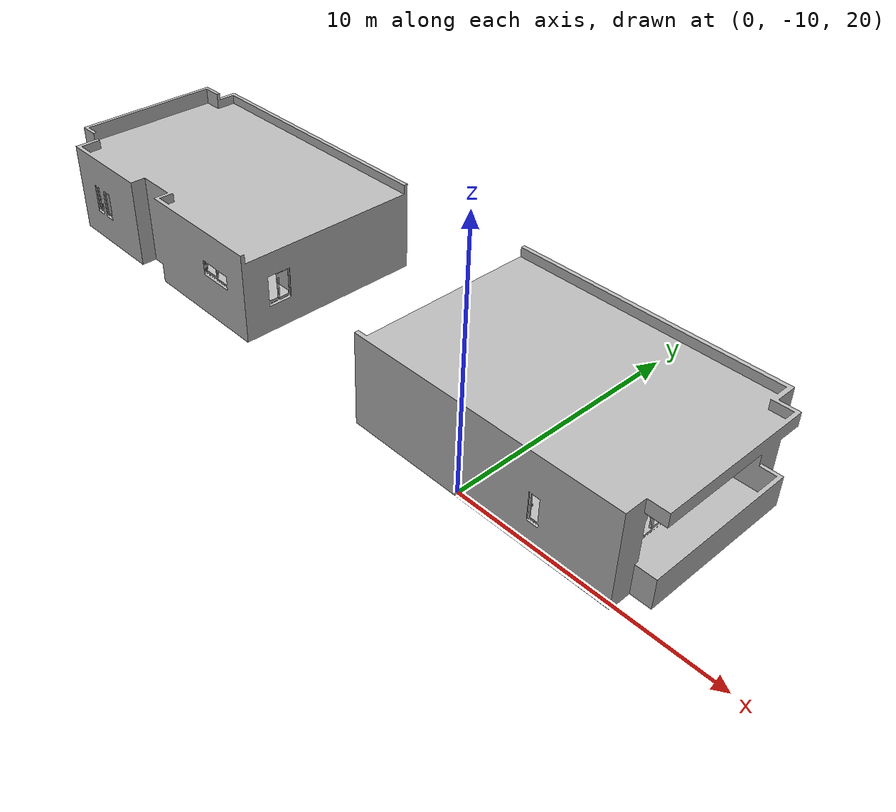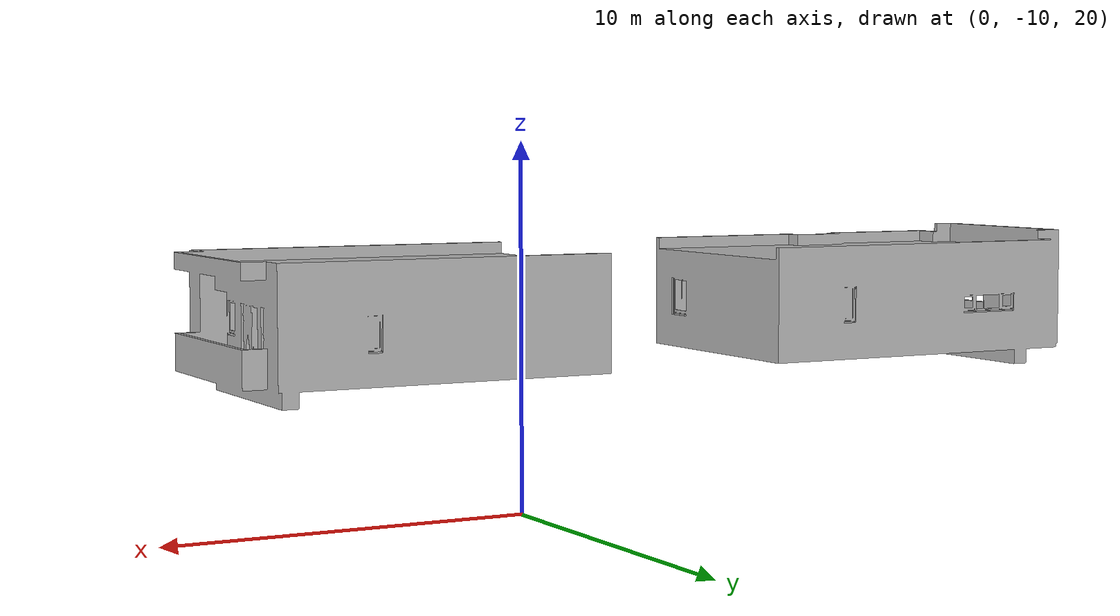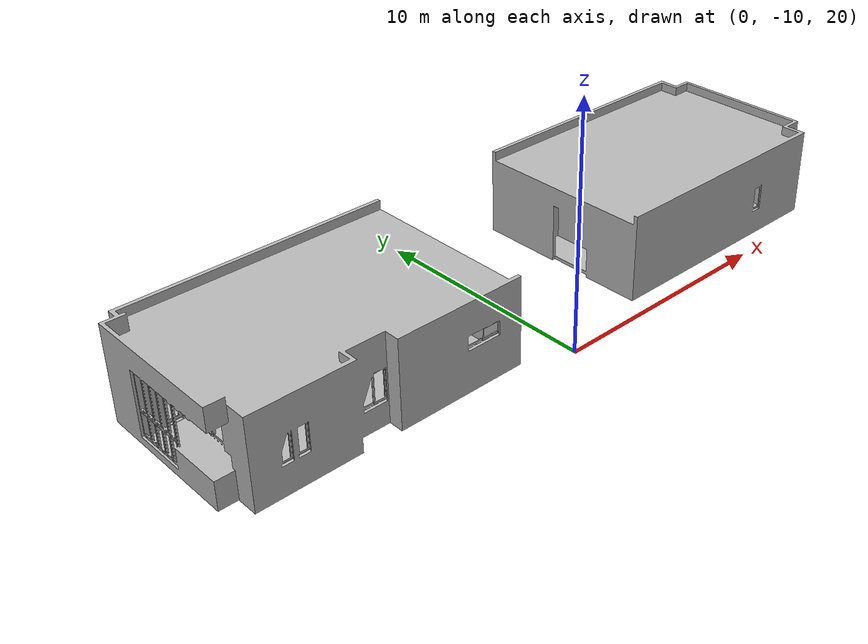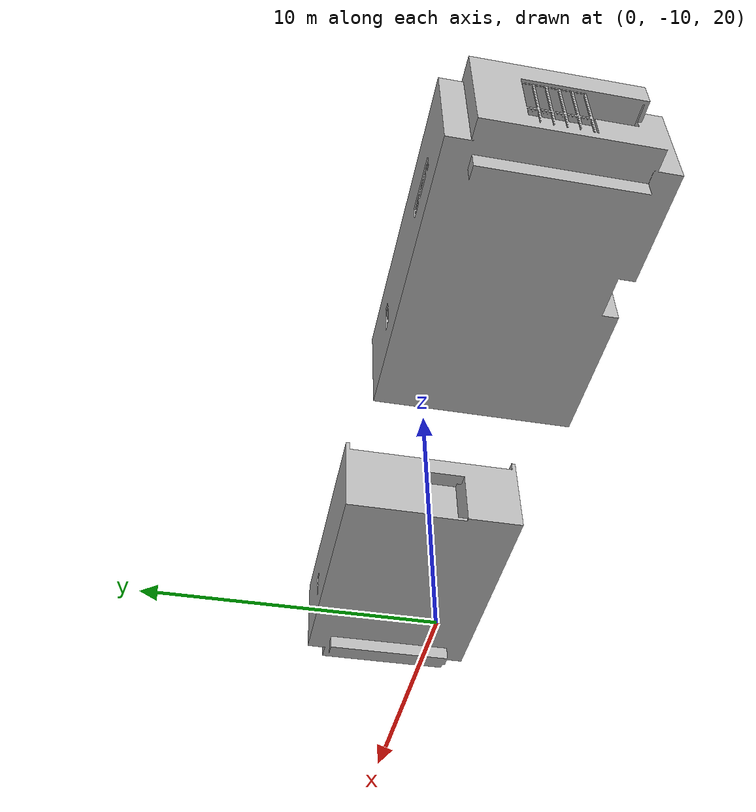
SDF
<?xml version="1.0" ?>
<sdf version="1.5">
  <model name="day3_model">
    <pose>0 0 0 1.5708 0 0</pose>
    <static>true</static>
    <link name="day3_model_link">
      <collision name="collision">
        <geometry>
          <mesh>
          <scale>0.00001 0.000001 0.00001</scale>
            <uri>model://day3_model/meshes/model.dae</uri>
          </mesh>
        </geometry>
      </collision>
      <visual name="visual">
        <geometry>
          <mesh>
          <scale>0.008 0.008 0.008</scale>
            <uri>model://day3_model/meshes/model.dae</uri>
          </mesh>
        </geometry>
      </visual>
    </link>
  </model>
</sdf>
